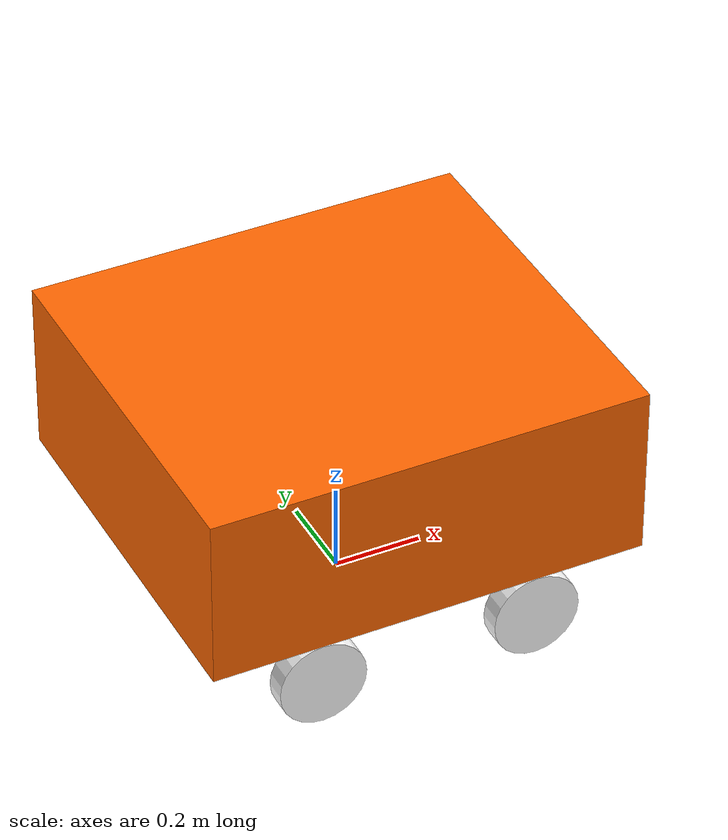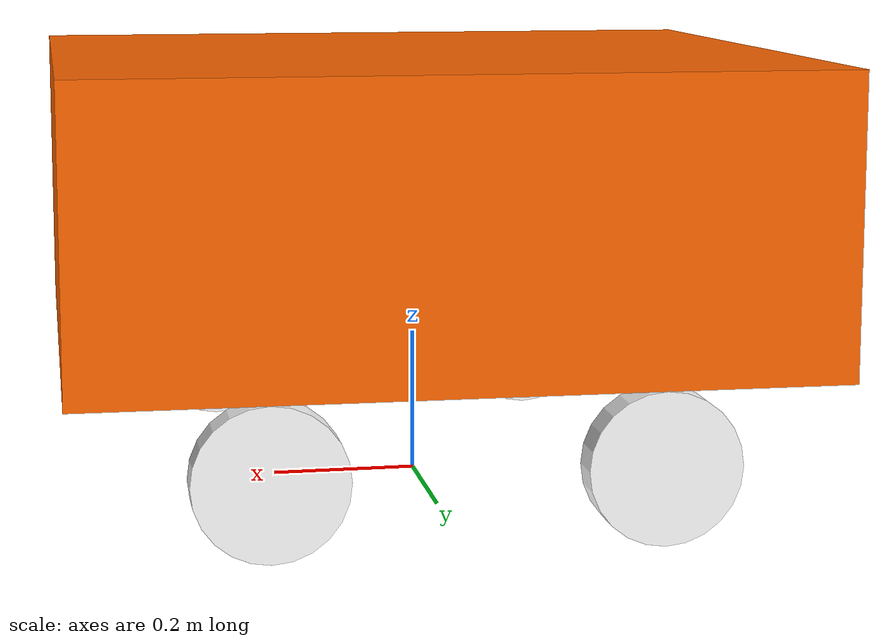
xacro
<?xml version="1.0"?>

<robot name="four_wheel_car" xmlns:xi="http://www.w3.org/2001/XInclude" xmlns:gazebo="http://playerstage.sourceforge.net/gazebo/xmlschema/#gz" xmlns:model="http://playerstage.sourceforge.net/gazebo/xmlschema/#model" xmlns:sensor="http://playerstage.sourceforge.net/gazebo/xmlschema/#sensor" xmlns:body="http://playerstage.sourceforge.net/gazebo/xmlschema/#body" xmlns:geom="http://playerstage.sourceforge.net/gazebo/xmlschema/#geom" xmlns:joint="http://playerstage.sourceforge.net/gazebo/xmlschema/#joint" xmlns:controller="http://playerstage.sourceforge.net/gazebo/xmlschema/#controller" xmlns:interface="http://playerstage.sourceforge.net/gazebo/xmlschema/#interface" xmlns:rendering="http://playerstage.sourceforge.net/gazebo/xmlschema/#rendering" xmlns:renderable="http://playerstage.sourceforge.net/gazebo/xmlschema/#renderable" xmlns:physics="http://playerstage.sourceforge.net/gazebo/xmlschema/#physics" xmlns:xacro="http://ros.org/wiki/xacro">

    <include filename="$(find four_wheel_car_description)/urdf/four_wheel_car_body.urdf.xacro" />

    <!-- Body of SmartCar, with plates, standoffs and Create (including sim sensors) -->
    <four_wheel_car_body />

    <four_wheel_car_sim />

</robot>

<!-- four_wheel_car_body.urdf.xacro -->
<robot name="four_wheel_car" xmlns:xacro="http://ros.org/wiki/xacro">

    <!-- Macro for SmartCar body. Including Gazebo extensions, but does not include Kinect -->
    <include filename="$(find four_wheel_car_description)/urdf/four_wheel_car.gazebo.urdf.xacro" />

    <xacro:macro name="four_wheel_car_body">

        <link name="base_link">

            <visual>
                <origin xyz="0 0 0.4" rpy="0 0 0" />
                <geometry>
                    <box size="1 0.9 0.4" />
                </geometry>
                <material name="yellow">
                    <color rgba="1 0.4 0 1" />
                </material>
            </visual>

            <collision>
                <origin xyz="0 0 0.4" rpy="0 0 0" />
                <geometry>
                    <box size="1 0.9 0.4" />
                </geometry>
            </collision>
        </link>

        <joint name="wheel_right_front_joint" type="continuous">
            <parent link="base_link" />
            <child link="wheel_right_front_link" />
            <origin xyz="0.25 -0.425 0.1" rpy="0 0 1.57" />
            <axis xyz="0 0 1" />
        </joint>

        <link name="wheel_right_front_link">

            <visual>
                <origin xyz="0 0 0" rpy="0 1.57 0" />
                <geometry>
                    <cylinder length="0.05" radius="0.1" />
                </geometry>
                <material name="dark">
                    <color rgba="1 1 1 1" />
                </material>
            </visual>

            <collision>
                <origin xyz="0 0 0" rpy="0 1.57 0" />
                <geometry>
                    <cylinder length="0.05" radius="0.1" />
                </geometry>
            </collision>

        </link>

        <joint name="wheel_left_front_joint" type="continuous">
            <parent link="base_link" />
            <child link="wheel_left_front_link" />
            <origin xyz="0.25 0.425 0.1" rpy="0 0 1.57" />
            <axis xyz="0 0 1" />
        </joint>

        <link name="wheel_left_front_link">
            <visual>
                <origin xyz="0 0 0" rpy="0 1.57 0" />
                <geometry>
                    <cylinder length="0.05" radius="0.1" />
                </geometry>
                <material name="dark">
                    <color rgba="1 1 1 1" />
                </material>
            </visual>

            <collision>
                <origin xyz="0 0 0" rpy="0 1.57 0" />
                <geometry>
                    <cylinder length="0.05" radius="0.1" />
                </geometry>
            </collision>
        </link>

        <joint name="wheel_left_back_joint" type="continuous">
            <parent link="base_link" />
            <child link="wheel_left_back_link" />
            <origin xyz="-0.25 0.425 0.1" rpy="0 0 1.57" />
            <axis xyz="0 0 1" />
        </joint>

        <link name="wheel_left_back_link">
            <visual>
                <origin xyz="0 0 0" rpy="0 1.57 0" />
                <geometry>
                    <cylinder length="0.05" radius="0.1" />
                </geometry>
                <material name="dark">
                    <color rgba="1 1 1 1" />
                </material>
            </visual>
            <collision>
                <origin xyz="0 0 0" rpy="0 1.57 0" />
                <geometry>
                    <cylinder length="0.05" radius="0.1" />
                </geometry>
            </collision>
        </link>

        <joint name="wheel_right_back_joint" type="continuous">
            <parent link="base_link" />
            <child link="wheel_right_back_link" />
            <origin xyz="-0.25 -0.425 0.1" rpy="0 0 1.57" />
            <axis xyz="0 0 1" />
        </joint>

        <link name="wheel_right_back_link">
            <visual>
                <origin xyz="0 0 0" rpy="0 1.57 0" />
                <geometry>
                    <cylinder length="0.05" radius="0.1" />
                </geometry>
                <material name="dark">
                    <color rgba="1 1 1 1" />
                </material>
            </visual>

            <collision>
                <origin xyz="0 0 0" rpy="0 1.57 0" />
                <geometry>
                    <cylinder length="0.05" radius="0.1" />
                </geometry>
            </collision>
        </link>
    </xacro:macro>

</robot>
